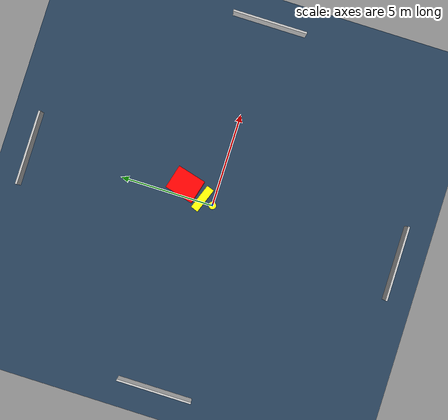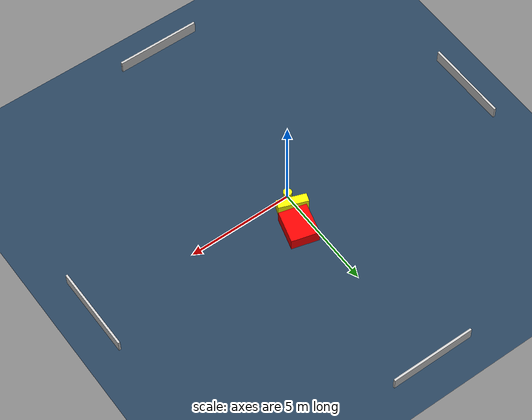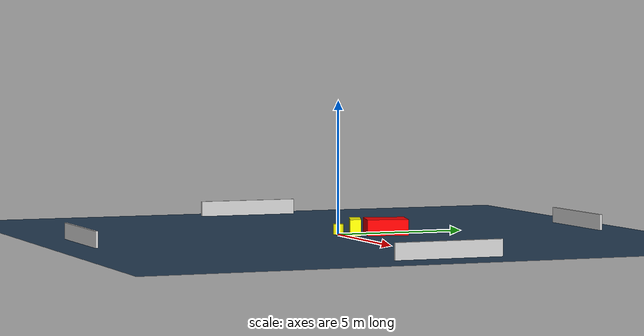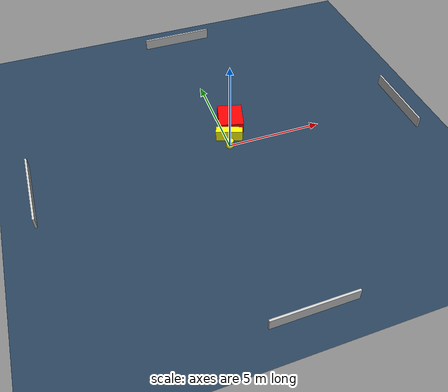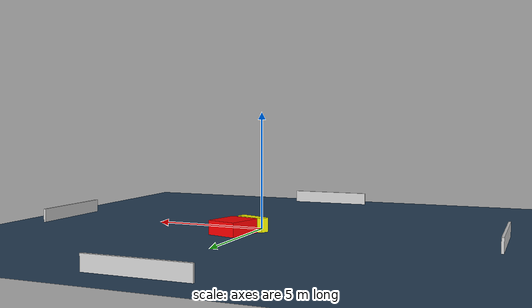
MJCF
<?xml version="1.0" ?>
<mujoco model="generated_environment">
  <option timestep="0.01" integrator="RK4" cone="elliptic"/>
  <default>
    <geom density="1"/>
  </default>
  <asset>
    <texture builtin="gradient" height="3072" name="skybox" rgb1="0.3 0.5 0.7" rgb2="0 0 0" type="skybox" width="512"/>
    <texture builtin="checker" height="300" name="groundplane" rgb1="0.2 0.3 0.4" rgb2="0.1 0.2 0.3" type="2d" width="300"/>
    <material name="groundplane" reflectance="0.2" texrepeat="5 5" texture="groundplane"/>
  </asset>
  <worldbody>
    <light dir="0 0 -1" directional="true" pos="0 0 1.5"/>
    <geom condim="3" friction="0.5 0.005 0.001" material="groundplane" name="floor" pos="0 0 0" size="0 0 0.05" type="plane"/>
    <body name="walls">
      <geom name="wall_1" condim="4" pos="-10.0 0.0 0.3" rgba="0.800000011920929 0.800000011920929 0.800000011920929 1.0" size="0.05 2.0 0.3" type="box"/>
      <geom name="wall_2" condim="4" pos="10.0 0.0 0.3" rgba="0.800000011920929 0.800000011920929 0.800000011920929 1.0" size="0.05 2.0 0.3" type="box"/>
      <geom name="wall_3" condim="4" pos="0.0 -10.0 0.3" rgba="0.800000011920929 0.800000011920929 0.800000011920929 1.0" size="2.0 0.05 0.3" type="box"/>
      <geom name="wall_4" condim="4" pos="0.0 10.0 0.3" rgba="0.800000011920929 0.800000011920929 0.800000011920929 1.0" size="2.0 0.05 0.3" type="box"/>
    </body>
    <body name="robot">
      <joint name="joint_x" type="slide" pos="0 0 0" axis="1 0 0"/>
      <joint name="joint_y" type="slide" pos="0 0 0" axis="0 1 0"/>
      <geom name="robot" type="cylinder" pos="0.0 0.0 0.2" size="0.2 0.2 0.0" mass="5.0" friction="1.0 0.005 0.0001" condim="4" rgba="1.0 1.0 0.0 1.0"/>
    </body>
    <body name="obstacle_1_movable">
      <geom name="obstacle_1_movable" condim="4" pos="0.1745004460240706 0.5942668341201537 0.3" euler="0 0 159.6588433332924" friction="0.0 0.005 0.001" rgba="1.0 1.0 0.0 1.0" size="0.6921794758108479 0.20611797379120378 0.3" type="box" mass="0.1"/>
      <joint type="free"/>
    </body>
    <body name="obstacle_2_static">
      <geom name="obstacle_2_static" condim="4" pos="0.6144217783931002 1.6608573647758076 0.3" euler="0 0 74.84140243429222" friction="0.0 0.005 0.001" rgba="1.0 0.0 0.0 1.0" size="0.7777492722214474 0.6512860747818343 0.3" type="box"/>
    </body>
  </worldbody>
  <actuator>
    <motor name="actuator_x" joint="joint_x" gear="1" ctrlrange="-1 1"/>
    <motor name="actuator_y" joint="joint_y" gear="1" ctrlrange="-1 1"/>
  </actuator>
</mujoco>
